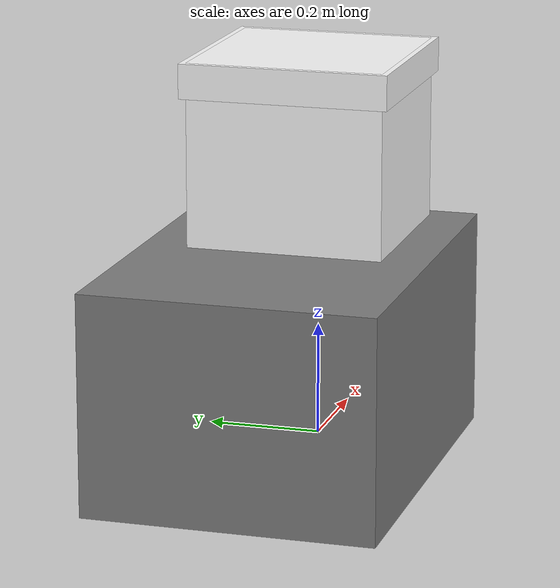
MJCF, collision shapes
<mujoco model="omron_mobile_base">
    <asset>
        <mesh file="meshes/omron_mobile_base/omron_0.obj" name="omron_0_vis" scale="1 1 1"/>
        <mesh file="meshes/omron_mobile_base/omron_1.obj" name="omron_1_vis" scale="1 1 1"/>
        <mesh file="meshes/omron_mobile_base/omron_2.obj" name="omron_2_vis" scale="1 1 1"/>
        <mesh file="meshes/omron_mobile_base/omron_3.obj" name="omron_3_vis" scale="1 1 1"/>
        <mesh file="meshes/omron_mobile_base/omron_4.obj" name="omron_4_vis" scale="1 1 1"/>
        <mesh file="meshes/omron_mobile_base/omron_5.obj" name="omron_5_vis" scale="1 1 1"/>
        <mesh file="meshes/omron_mobile_base/omron_6.obj" name="omron_6_vis" scale="1 1 1"/>
        <mesh file="meshes/omron_mobile_base/omron_7.obj" name="omron_7_vis" scale="1 1 1"/>
        <material name="Opaque(128,128,128)" specular="0.0" shininess="0.25" rgba="0.501961 0.501961 0.501961 1.000000"/>
        <material name="Opaque(185,185,185)" specular="0.0" shininess="0.25" rgba="0.725490 0.725490 0.725490 1.000000"/>
        <material name="Opaque(190,190,190)" specular="0.0" shininess="0.25" rgba="0.745098 0.745098 0.745098 1.000000"/>
        <material name="Opaque(202,209,236)" specular="0.0" shininess="0.25" rgba="0.792157 0.819608 0.925490 1.000000"/>
        <material name="Opaque(25,23,27)" specular="0.0" shininess="0.25" rgba="0.098039 0.090196 0.105882 1.000000"/>
        <material name="Opaque(255,255,255)" specular="0.0" shininess="0.25" rgba="1.000000 1.000000 1.000000 1.000000"/>
        <material name="Opaque(54,61,65)" specular="0.0" shininess="0.25" rgba="0.211765 0.239216 0.254902 1.000000"/>
        <material name="Opaque(63,63,63)" specular="0.0" shininess="0.25" rgba="0.250980 0.250980 0.250980 1.000000"/>
        <material name="Opaque(64,64,64)" specular="0.0" shininess="0.25" rgba="0.250980 0.250980 0.250980 1.000000"/>
        <material name="Steel_-_Satin" specular="0.0" shininess="0.25" rgba="0.627451 0.627451 0.627451 1.000000"/>
        <material name="Shell005_001_001_002_001" specular="0.5" shininess="0.45" rgba="1.000000 1.000000 1.000000 1.000000"/>
    </asset>
    <actuator>
        <velocity ctrllimited="true" ctrlrange="-1.00 1.00" joint="joint_mobile_forward" kv="1000" name="actuator_mobile_forward" forcelimited="true" forcerange="-600 600"/>
		<velocity ctrllimited="true" ctrlrange="-1.00 1.00" joint="joint_mobile_side" kv="1000" name="actuator_mobile_side" forcelimited="true" forcerange="-600 600"/>
		<velocity ctrllimited="true" ctrlrange="-1.50 1.50" joint="joint_mobile_yaw" kv="1500" name="actuator_mobile_yaw" forcelimited="true" forcerange="-600 600"/>
		<motor ctrllimited="true" ctrlrange="-100000.0 100000.0" joint="joint_torso_height" name="actuator_torso_height" forcelimited="false"/>
	</actuator>
    <worldbody>
        <body name="base" pos="0 0 0">
            <body name="fixed_support" pos="-0.05 0 0.50">
				<geom type="box" pos="0 0 0" size="0.16 0.16 0.2" group="0" material="Shell005_001_001_002_001"/>
				<geom name="fixed_support" type="box" pos="0 0 0" size="0.16 0.16 0.2" group="1" material="Shell005_001_001_002_001"/>
				<body name="upper_column" pos="0.0 0.0 0.2">
                    <!-- add robot here -->
					<joint name="joint_torso_height" pos="0 0 0" axis="0 0 1" type="slide" limited="true" range="0 0.34" damping="0.01" armature="0.0" frictionloss="1000" ref="0"/>
                    <geom type="box" pos="0.0 0.0 -0.225" size="0.17 0.17 0.225" group="0" material="Shell005_001_001_002_001"/>
					<geom name="upper_column" type="box" pos="0.0 0.0 -0.225" size="0.17 0.17 0.225" group="1" material="Shell005_001_001_002_001"/>
                    <body name="support" pos="0 0 0">
                        <!-- add robot here -->
                        <site name="center" type="sphere" pos="0 0 0" size="0.01" group="1" rgba="0 0 0 0"/>
                        <geom type="box" pos="0 0 -0.03" size="0.18 0.18 0.03" group="0" material="Shell005_001_001_002_001"/>
                        <geom name="support" type="box" pos="0 0 -0.03" size="0.18 0.18 0.03" group="1" material="Shell005_001_001_002_001"/>
                    </body>
                </body>
            </body>

            <body name="wheeled_base" pos="-0.20 0 0.192">
                <geom friction="0.95 0.3 0.1" type="mesh" mesh="omron_0_vis" conaffinity="0" contype="0" group="1" material="Steel_-_Satin"/>
                <geom friction="0.95 0.3 0.1" type="mesh" mesh="omron_1_vis" conaffinity="0" contype="0" group="1" material="Opaque(25,23,27)"/>
                <geom friction="0.95 0.3 0.1" type="mesh" mesh="omron_2_vis" conaffinity="0" contype="0" group="1" material="Opaque(185,185,185)"/>
                <geom friction="0.95 0.3 0.1" type="mesh" mesh="omron_3_vis" conaffinity="0" contype="0" group="1" material="Opaque(128,128,128)"/>
                <geom friction="0.95 0.3 0.1" type="mesh" mesh="omron_4_vis" conaffinity="0" contype="0" group="1" material="Opaque(190,190,190)"/>
                <geom friction="0.95 0.3 0.1" type="mesh" mesh="omron_5_vis" conaffinity="0" contype="0" group="1" material="Opaque(255,255,255)"/>
                <geom friction="0.95 0.3 0.1" type="mesh" mesh="omron_6_vis" conaffinity="0" contype="0" group="1" material="Opaque(202,209,236)"/>
                <geom friction="0.95 0.3 0.1" type="mesh" mesh="omron_7_vis" conaffinity="0" contype="0" group="1" material="Opaque(63,63,63)"/>

                <geom pos="0 0 0" size="0.35 0.25 0.19" type="box" name="pedestal_feet_col" density="10"/>
            </body>

            <joint name="joint_mobile_forward" pos="-0.21 0 0" axis="0 1 0" type="slide" limited="false" damping="0" armature="0.0" frictionloss="250"/>
			<joint name="joint_mobile_side" pos="-0.21 0 0" axis="1 0 0" type="slide" limited="false" damping="0" armature="0.0" frictionloss="250"/>
			<joint name="joint_mobile_yaw" pos="-0.21 0 0" axis="0 0 1" type="hinge" limited="false" damping="0" armature="0.0" frictionloss="250"/>
        </body>
    </worldbody>
</mujoco>
